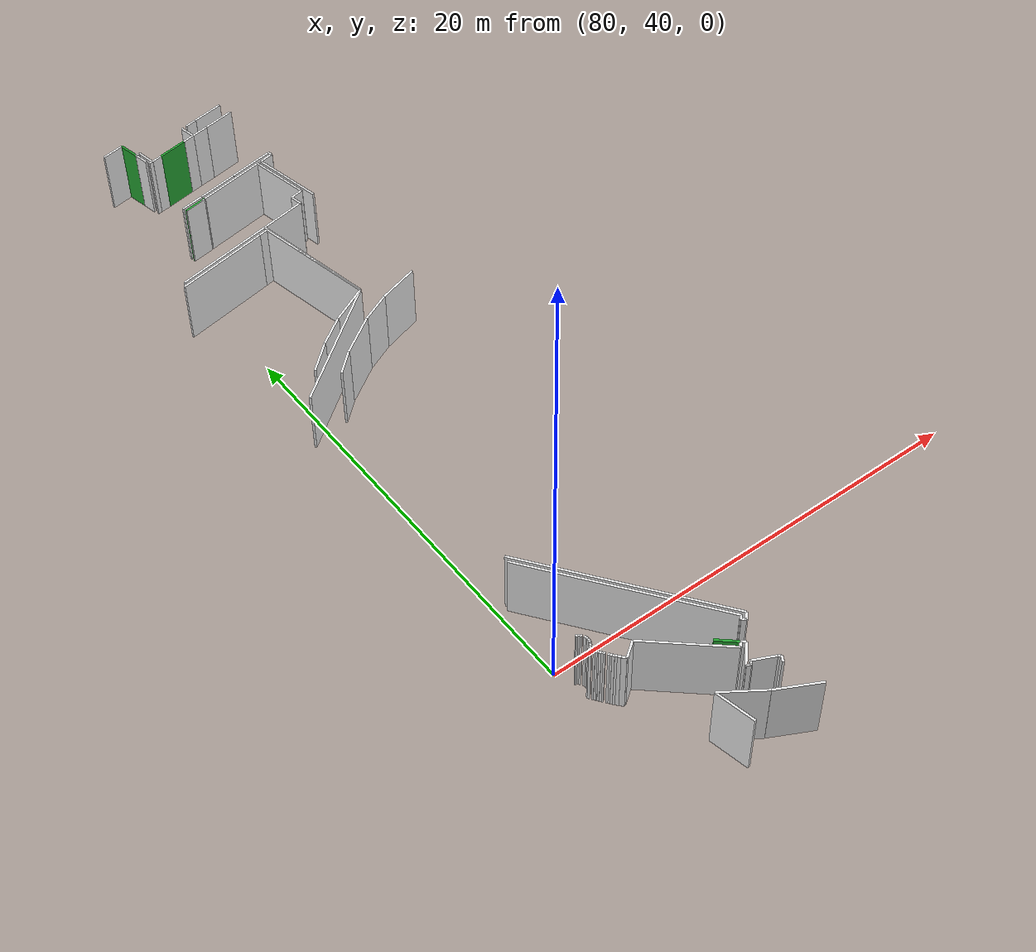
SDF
<sdf version="1.6">
 <world name="default">
  <model name="wall_81.1_72.9_1.5">
   <static>true</static>
   <pose>81.05000000001746 72.92000000015832 1.5 0 0 1.7721134351846652</pose>
   <link name="link">
    <visual name="visual">
     <geometry><box><size>1.0001999799880765 0.1 3</size></box></geometry>
     <material>
      <script><uri>file://media/materials/scripts/gazebo.material</uri><name>Gazebo/Green</name></script>
     </material>
    </visual>
    <collision name="collision"><geometry><box><size>1.0001999799880765 0.1 3</size></box></geometry></collision>
   </link>
  </model>
  <model name="wall_81.6_67.9_1.5">
   <static>true</static>
   <pose>81.55000000001746 67.88999999989755 1.5 0 0 0.2009542638673007</pose>
   <link name="link">
    <visual name="visual">
     <geometry><box><size>1.1021796587332557 0.1 3</size></box></geometry>
     <material>
      <script><uri>file://media/materials/scripts/gazebo.material</uri><name>Gazebo/Green</name></script>
     </material>
    </visual>
    <collision name="collision"><geometry><box><size>1.1021796587332557 0.1 3</size></box></geometry></collision>
   </link>
  </model>
  <model name="wall_84.6_35.7_1.5">
   <static>true</static>
   <pose>84.57999999989988 35.72999999998137 1.5 0 0 2.4132752726364988</pose>
   <link name="link">
    <visual name="visual">
     <geometry><box><size>0.9915644207652375 0.1 3</size></box></geometry>
     <material>
      <script><uri>file://media/materials/scripts/gazebo.material</uri><name>Gazebo/Green</name></script>
     </material>
    </visual>
    <collision name="collision"><geometry><box><size>0.9915644207652375 0.1 3</size></box></geometry></collision>
   </link>
  </model>
  <model name="wall_82.7_71.8_1.5">
   <static>true</static>
   <pose>82.68499999999767 71.84499999997206 1.5 0 0 0.19739555986646415</pose>
   <link name="link">
    <visual name="visual">
     <geometry><box><size>1.3767352686508738 0.1 3</size></box></geometry>
     <material>
      <script><uri>file://media/materials/scripts/gazebo.material</uri><name>Gazebo/Green</name></script>
     </material>
    </visual>
    <collision name="collision"><geometry><box><size>1.3767352686508738 0.1 3</size></box></geometry></collision>
   </link>
  </model>
  <model name="wall_81.2_72.1_1.5">
   <static>true</static>
   <pose>81.21500000002561 72.10000000009313 1.5 0 0 1.7652764429739842</pose>
   <link name="link">
    <visual name="visual">
     <geometry><box><size>0.6726812025007879 0.1 3</size></box></geometry>
     <material>
      <script><uri>file://media/materials/scripts/gazebo.material</uri><name>Gazebo/White</name></script>
     </material>
    </visual>
    <collision name="collision"><geometry><box><size>0.6726812025007879 0.1 3</size></box></geometry></collision>
   </link>
  </model>
  <model name="wall_80.4_73.3_1.5">
   <static>true</static>
   <pose>80.43499999999767 73.31000000005588 1.5 0 0 -2.949804511433895</pose>
   <link name="link">
    <visual name="visual">
     <geometry><box><size>1.049237818672231 0.1 3</size></box></geometry>
     <material>
      <script><uri>file://media/materials/scripts/gazebo.material</uri><name>Gazebo/White</name></script>
     </material>
    </visual>
    <collision name="collision"><geometry><box><size>1.049237818672231 0.1 3</size></box></geometry></collision>
   </link>
  </model>
  <model name="wall_80.9_64.3_1.5">
   <static>true</static>
   <pose>80.89999999999418 64.30999999982305 1.5 0 0 0.19486391966931105</pose>
   <link name="link">
    <visual name="visual">
     <geometry><box><size>4.647967297627117 0.1 3</size></box></geometry>
     <material>
      <script><uri>file://media/materials/scripts/gazebo.material</uri><name>Gazebo/White</name></script>
     </material>
    </visual>
    <collision name="collision"><geometry><box><size>4.647967297627117 0.1 3</size></box></geometry></collision>
   </link>
  </model>
  <model name="wall_84.2_65.0_1.5">
   <static>true</static>
   <pose>84.23999999999069 64.96999999997206 1.5 0 0 0.1955806799877843</pose>
   <link name="link">
    <visual name="visual">
     <geometry><box><size>2.1612033685678047 0.1 3</size></box></geometry>
     <material>
      <script><uri>file://media/materials/scripts/gazebo.material</uri><name>Gazebo/White</name></script>
     </material>
    </visual>
    <collision name="collision"><geometry><box><size>2.1612033685678047 0.1 3</size></box></geometry></collision>
   </link>
  </model>
  <model name="wall_85.2_65.5_1.5">
   <static>true</static>
   <pose>85.24499999999534 65.45000000018626 1.5 0 0 1.7717505904446613</pose>
   <link name="link">
    <visual name="visual">
     <geometry><box><size>0.551089829371909 0.1 3</size></box></geometry>
     <material>
      <script><uri>file://media/materials/scripts/gazebo.material</uri><name>Gazebo/White</name></script>
     </material>
    </visual>
    <collision name="collision"><geometry><box><size>0.551089829371909 0.1 3</size></box></geometry></collision>
   </link>
  </model>
  <model name="wall_85.5_65.8_1.5">
   <static>true</static>
   <pose>85.48500000001513 65.78000000002794 1.5 0 0 0.20065287673540141</pose>
   <link name="link">
    <visual name="visual">
     <geometry><box><size>0.6020797288941763 0.1 3</size></box></geometry>
     <material>
      <script><uri>file://media/materials/scripts/gazebo.material</uri><name>Gazebo/White</name></script>
     </material>
    </visual>
    <collision name="collision"><geometry><box><size>0.6020797288941763 0.1 3</size></box></geometry></collision>
   </link>
  </model>
  <model name="wall_85.5_67.2_1.5">
   <static>true</static>
   <pose>85.5 67.22999999998137 1.5 0 0 1.7695750116283997</pose>
   <link name="link">
    <visual name="visual">
     <geometry><box><size>2.835842026896503 0.1 3</size></box></geometry>
     <material>
      <script><uri>file://media/materials/scripts/gazebo.material</uri><name>Gazebo/White</name></script>
     </material>
    </visual>
    <collision name="collision"><geometry><box><size>2.835842026896503 0.1 3</size></box></geometry></collision>
   </link>
  </model>
  <model name="wall_83.7_68.3_1.5">
   <static>true</static>
   <pose>83.65499999999884 68.31000000005588 1.5 0 0 -2.9460409760625255</pose>
   <link name="link">
    <visual name="visual">
     <geometry><box><size>3.190814942895208 0.1 3</size></box></geometry>
     <material>
      <script><uri>file://media/materials/scripts/gazebo.material</uri><name>Gazebo/White</name></script>
     </material>
    </visual>
    <collision name="collision"><geometry><box><size>3.190814942895208 0.1 3</size></box></geometry></collision>
   </link>
  </model>
  <model name="wall_82.1_68.0_1.5">
   <static>true</static>
   <pose>82.06000000002678 67.98999999999069 1.5 0 0 -2.8198420989021127</pose>
   <link name="link">
    <visual name="visual">
     <geometry><box><size>0.06324555320704896 0.1 3</size></box></geometry>
     <material>
      <script><uri>file://media/materials/scripts/gazebo.material</uri><name>Gazebo/White</name></script>
     </material>
    </visual>
    <collision name="collision"><geometry><box><size>0.06324555320704896 0.1 3</size></box></geometry></collision>
   </link>
  </model>
  <model name="wall_81.5_67.9_1.5">
   <static>true</static>
   <pose>81.52000000001863 67.87999999988824 1.5 0 0 -2.9479706605614444</pose>
   <link name="link">
    <visual name="visual">
     <geometry><box><size>1.039422916869021 0.1 3</size></box></geometry>
     <material>
      <script><uri>file://media/materials/scripts/gazebo.material</uri><name>Gazebo/White</name></script>
     </material>
    </visual>
    <collision name="collision"><geometry><box><size>1.039422916869021 0.1 3</size></box></geometry></collision>
   </link>
  </model>
  <model name="wall_85.7_68.7_1.5">
   <static>true</static>
   <pose>85.73999999999069 68.71499999985099 1.5 0 0 -2.9411940999358763</pose>
   <link name="link">
    <visual name="visual">
     <geometry><box><size>0.6530696746816714 0.1 3</size></box></geometry>
     <material>
      <script><uri>file://media/materials/scripts/gazebo.material</uri><name>Gazebo/White</name></script>
     </material>
    </visual>
    <collision name="collision"><geometry><box><size>0.6530696746816714 0.1 3</size></box></geometry></collision>
   </link>
  </model>
  <model name="wall_85.8_67.0_1.5">
   <static>true</static>
   <pose>85.75 66.98999999999069 1.5 0 0 -1.374559514958863</pose>
   <link name="link">
    <visual name="visual">
     <geometry><box><size>3.384966764819104 0.1 3</size></box></geometry>
     <material>
      <script><uri>file://media/materials/scripts/gazebo.material</uri><name>Gazebo/White</name></script>
     </material>
    </visual>
    <collision name="collision"><geometry><box><size>3.384966764819104 0.1 3</size></box></geometry></collision>
   </link>
  </model>
  <model name="wall_83.1_39.9_1.5">
   <static>true</static>
   <pose>83.10500000001048 39.88000000012107 1.5 0 0 -0.9358171018698879</pose>
   <link name="link">
    <visual name="visual">
     <geometry><box><size>8.918323833668834 0.1 3</size></box></geometry>
     <material>
      <script><uri>file://media/materials/scripts/gazebo.material</uri><name>Gazebo/White</name></script>
     </material>
    </visual>
    <collision name="collision"><geometry><box><size>8.918323833668834 0.1 3</size></box></geometry></collision>
   </link>
  </model>
  <model name="wall_85.7_36.2_1.5">
   <static>true</static>
   <pose>85.67999999999302 36.21500000008382 1.5 0 0 -2.3217253895523142</pose>
   <link name="link">
    <visual name="visual">
     <geometry><box><size>0.20518284522827895 0.1 3</size></box></geometry>
     <material>
      <script><uri>file://media/materials/scripts/gazebo.material</uri><name>Gazebo/White</name></script>
     </material>
    </visual>
    <collision name="collision"><geometry><box><size>0.20518284522827895 0.1 3</size></box></geometry></collision>
   </link>
  </model>
  <model name="wall_84.9_35.3_1.5">
   <static>true</static>
   <pose>84.86500000001979 35.31000000005588 1.5 0 0 -2.3276308331322193</pose>
   <link name="link">
    <visual name="visual">
     <geometry><box><size>0.24758836783494145 0.1 3</size></box></geometry>
     <material>
      <script><uri>file://media/materials/scripts/gazebo.material</uri><name>Gazebo/White</name></script>
     </material>
    </visual>
    <collision name="collision"><geometry><box><size>0.24758836783494145 0.1 3</size></box></geometry></collision>
   </link>
  </model>
  <model name="wall_83.3_36.5_1.5">
   <static>true</static>
   <pose>83.3300000000163 36.515000000130385 1.5 0 0 2.4126008939400343</pose>
   <link name="link">
    <visual name="visual">
     <geometry><box><size>3.8882000976497033 0.1 3</size></box></geometry>
     <material>
      <script><uri>file://media/materials/scripts/gazebo.material</uri><name>Gazebo/White</name></script>
     </material>
    </visual>
    <collision name="collision"><geometry><box><size>3.8882000976497033 0.1 3</size></box></geometry></collision>
   </link>
  </model>
  <model name="wall_81.6_37.6_1.5">
   <static>true</static>
   <pose>81.55999999999767 37.574999999953434 1.5 0 0 -2.508166770423084</pose>
   <link name="link">
    <visual name="visual">
     <geometry><box><size>0.7940403013767493 0.1 3</size></box></geometry>
     <material>
      <script><uri>file://media/materials/scripts/gazebo.material</uri><name>Gazebo/White</name></script>
     </material>
    </visual>
    <collision name="collision"><geometry><box><size>0.7940403013767493 0.1 3</size></box></geometry></collision>
   </link>
  </model>
  <model name="wall_81.2_37.4_1.5">
   <static>true</static>
   <pose>81.1699999999837 37.419999999925494 1.5 0 0 2.2896263260044316</pose>
   <link name="link">
    <visual name="visual">
     <geometry><box><size>0.21260291637603487 0.1 3</size></box></geometry>
     <material>
      <script><uri>file://media/materials/scripts/gazebo.material</uri><name>Gazebo/White</name></script>
     </material>
    </visual>
    <collision name="collision"><geometry><box><size>0.21260291637603487 0.1 3</size></box></geometry></collision>
   </link>
  </model>
  <model name="wall_81.1_37.6_1.5">
   <static>true</static>
   <pose>81.05499999999302 37.55499999993481 1.5 0 0 2.2565258381046025</pose>
   <link name="link">
    <visual name="visual">
     <geometry><box><size>0.1421267039139652 0.1 3</size></box></geometry>
     <material>
      <script><uri>file://media/materials/scripts/gazebo.material</uri><name>Gazebo/White</name></script>
     </material>
    </visual>
    <collision name="collision"><geometry><box><size>0.1421267039139652 0.1 3</size></box></geometry></collision>
   </link>
  </model>
  <model name="wall_81.0_37.6_1.5">
   <static>true</static>
   <pose>80.98000000001048 37.64500000001863 1.5 0 0 2.2794225967996993</pose>
   <link name="link">
    <visual name="visual">
     <geometry><box><size>0.09219544479768974 0.1 3</size></box></geometry>
     <material>
      <script><uri>file://media/materials/scripts/gazebo.material</uri><name>Gazebo/White</name></script>
     </material>
    </visual>
    <collision name="collision"><geometry><box><size>0.09219544479768974 0.1 3</size></box></geometry></collision>
   </link>
  </model>
  <model name="wall_80.9_37.7_1.5">
   <static>true</static>
   <pose>80.9200000000128 37.71999999997206 1.5 0 0 2.2142974379164873</pose>
   <link name="link">
    <visual name="visual">
     <geometry><box><size>0.09999999968567863 0.1 3</size></box></geometry>
     <material>
      <script><uri>file://media/materials/scripts/gazebo.material</uri><name>Gazebo/White</name></script>
     </material>
    </visual>
    <collision name="collision"><geometry><box><size>0.09999999968567863 0.1 3</size></box></geometry></collision>
   </link>
  </model>
  <model name="wall_80.9_37.8_1.5">
   <static>true</static>
   <pose>80.86999999999534 37.78999999980442 1.5 0 0 2.158798930342464</pose>
   <link name="link">
    <visual name="visual">
     <geometry><box><size>0.0721110255764384 0.1 3</size></box></geometry>
     <material>
      <script><uri>file://media/materials/scripts/gazebo.material</uri><name>Gazebo/White</name></script>
     </material>
    </visual>
    <collision name="collision"><geometry><box><size>0.0721110255764384 0.1 3</size></box></geometry></collision>
   </link>
  </model>
  <model name="wall_80.8_37.9_1.5">
   <static>true</static>
   <pose>80.82499999998254 37.85499999998137 1.5 0 0 2.1910458106539252</pose>
   <link name="link">
    <visual name="visual">
     <geometry><box><size>0.08602325290617123 0.1 3</size></box></geometry>
     <material>
      <script><uri>file://media/materials/scripts/gazebo.material</uri><name>Gazebo/White</name></script>
     </material>
    </visual>
    <collision name="collision"><geometry><box><size>0.08602325290617123 0.1 3</size></box></geometry></collision>
   </link>
  </model>
  <model name="wall_80.7_38.0_1.5">
   <static>true</static>
   <pose>80.72000000000116 37.98999999999069 1.5 0 0 2.158798929670837</pose>
   <link name="link">
    <visual name="visual">
     <geometry><box><size>0.07211102554415061 0.1 3</size></box></geometry>
     <material>
      <script><uri>file://media/materials/scripts/gazebo.material</uri><name>Gazebo/White</name></script>
     </material>
    </visual>
    <collision name="collision"><geometry><box><size>0.07211102554415061 0.1 3</size></box></geometry></collision>
   </link>
  </model>
  <model name="wall_80.7_38.1_1.5">
   <static>true</static>
   <pose>80.67500000001746 38.050000000046566 1.5 0 0 2.2655346024190655</pose>
   <link name="link">
    <visual name="visual">
     <geometry><box><size>0.07810249679454152 0.1 3</size></box></geometry>
     <material>
      <script><uri>file://media/materials/scripts/gazebo.material</uri><name>Gazebo/White</name></script>
     </material>
    </visual>
    <collision name="collision"><geometry><box><size>0.07810249679454152 0.1 3</size></box></geometry></collision>
   </link>
  </model>
  <model name="wall_80.6_38.1_1.5">
   <static>true</static>
   <pose>80.625 38.11499999999069 1.5 0 0 2.191045814350898</pose>
   <link name="link">
    <visual name="visual">
     <geometry><box><size>0.08602325256107957 0.1 3</size></box></geometry>
     <material>
      <script><uri>file://media/materials/scripts/gazebo.material</uri><name>Gazebo/White</name></script>
     </material>
    </visual>
    <collision name="collision"><geometry><box><size>0.08602325256107957 0.1 3</size></box></geometry></collision>
   </link>
  </model>
  <model name="wall_80.6_38.2_1.5">
   <static>true</static>
   <pose>80.58499999999185 38.175000000046566 1.5 0 0 2.1112158241550976</pose>
   <link name="link">
    <visual name="visual">
     <geometry><box><size>0.058309519172461015 0.1 3</size></box></geometry>
     <material>
      <script><uri>file://media/materials/scripts/gazebo.material</uri><name>Gazebo/White</name></script>
     </material>
    </visual>
    <collision name="collision">
     <geometry><box><size>0.058309519172461015 0.1 3</size></box></geometry>
    </collision>
   </link>
  </model>
  <model name="wall_80.5_38.2_1.5">
   <static>true</static>
   <pose>80.5450000000128 38.22999999998137 1.5 0 0 2.265534606235961</pose>
   <link name="link">
    <visual name="visual">
     <geometry><box><size>0.07810249643681061 0.1 3</size></box></geometry>
     <material>
      <script><uri>file://media/materials/scripts/gazebo.material</uri><name>Gazebo/White</name></script>
     </material>
    </visual>
    <collision name="collision"><geometry><box><size>0.07810249643681061 0.1 3</size></box></geometry></collision>
   </link>
  </model>
  <model name="wall_80.5_38.3_1.5">
   <static>true</static>
   <pose>80.5 38.28999999980442 1.5 0 0 2.158798930342464</pose>
   <link name="link">
    <visual name="visual">
     <geometry><box><size>0.0721110255764384 0.1 3</size></box></geometry>
     <material>
      <script><uri>file://media/materials/scripts/gazebo.material</uri><name>Gazebo/White</name></script>
     </material>
    </visual>
    <collision name="collision"><geometry><box><size>0.0721110255764384 0.1 3</size></box></geometry></collision>
   </link>
  </model>
  <model name="wall_80.4_38.4_1.5">
   <static>true</static>
   <pose>80.41000000000349 38.419999999925494 1.5 0 0 2.2142974351225195</pose>
   <link name="link">
    <visual name="visual">
     <geometry><box><size>0.10000000005820765 0.1 3</size></box></geometry>
     <material>
      <script><uri>file://media/materials/scripts/gazebo.material</uri><name>Gazebo/White</name></script>
     </material>
    </visual>
    <collision name="collision"><geometry><box><size>0.10000000005820765 0.1 3</size></box></geometry></collision>
   </link>
  </model>
  <model name="wall_80.4_38.5_1.5">
   <static>true</static>
   <pose>80.4200000000128 38.47999999998137 1.5 0 0 0.4636476092918444</pose>
   <link name="link">
    <visual name="visual">
     <geometry><box><size>0.0894427191312291 0.1 3</size></box></geometry>
     <material>
      <script><uri>file://media/materials/scripts/gazebo.material</uri><name>Gazebo/White</name></script>
     </material>
    </visual>
    <collision name="collision"><geometry><box><size>0.0894427191312291 0.1 3</size></box></geometry></collision>
   </link>
  </model>
  <model name="wall_80.5_38.5_1.5">
   <static>true</static>
   <pose>80.49000000001979 38.52499999990687 1.5 0 0 0.6947382743836776</pose>
   <link name="link">
    <visual name="visual">
     <geometry><box><size>0.07810249663803426 0.1 3</size></box></geometry>
     <material>
      <script><uri>file://media/materials/scripts/gazebo.material</uri><name>Gazebo/White</name></script>
     </material>
    </visual>
    <collision name="collision"><geometry><box><size>0.07810249663803426 0.1 3</size></box></geometry></collision>
   </link>
  </model>
  <model name="wall_80.6_38.6_1.5">
   <static>true</static>
   <pose>80.55000000001746 38.579999999841675 1.5 0 0 0.7853981638825122</pose>
   <link name="link">
    <visual name="visual">
     <geometry><box><size>0.084852813780252 0.1 3</size></box></geometry>
     <material>
      <script><uri>file://media/materials/scripts/gazebo.material</uri><name>Gazebo/White</name></script>
     </material>
    </visual>
    <collision name="collision"><geometry><box><size>0.084852813780252 0.1 3</size></box></geometry></collision>
   </link>
  </model>
  <model name="wall_80.6_38.7_1.5">
   <static>true</static>
   <pose>80.63000000000466 38.71999999997206 1.5 0 0 1.3258176622984403</pose>
   <link name="link">
    <visual name="visual">
     <geometry><box><size>0.08246211213739423 0.1 3</size></box></geometry>
     <material>
      <script><uri>file://media/materials/scripts/gazebo.material</uri><name>Gazebo/White</name></script>
     </material>
    </visual>
    <collision name="collision"><geometry><box><size>0.08246211213739423 0.1 3</size></box></geometry></collision>
   </link>
  </model>
  <model name="wall_80.6_38.8_1.5">
   <static>true</static>
   <pose>80.64500000001863 38.80499999993481 1.5 0 0 1.4601391059049407</pose>
   <link name="link">
    <visual name="visual">
     <geometry><box><size>0.0905538516971156 0.1 3</size></box></geometry>
     <material>
      <script><uri>file://media/materials/scripts/gazebo.material</uri><name>Gazebo/White</name></script>
     </material>
    </visual>
    <collision name="collision"><geometry><box><size>0.0905538516971156 0.1 3</size></box></geometry></collision>
   </link>
  </model>
  <model name="wall_80.6_38.9_1.5">
   <static>true</static>
   <pose>80.64500000001863 38.890000000130385 1.5 0 0 1.695151321341658</pose>
   <link name="link">
    <visual name="visual">
     <geometry><box><size>0.08062257755807112 0.1 3</size></box></geometry>
     <material>
      <script><uri>file://media/materials/scripts/gazebo.material</uri><name>Gazebo/White</name></script>
     </material>
    </visual>
    <collision name="collision"><geometry><box><size>0.08062257755807112 0.1 3</size></box></geometry></collision>
   </link>
  </model>
  <model name="wall_80.6_39.0_1.5">
   <static>true</static>
   <pose>80.625 38.96999999997206 1.5 0 0 1.9295669989791453</pose>
   <link name="link">
    <visual name="visual">
     <geometry><box><size>0.0854400370967353 0.1 3</size></box></geometry>
     <material>
      <script><uri>file://media/materials/scripts/gazebo.material</uri><name>Gazebo/White</name></script>
     </material>
    </visual>
    <collision name="collision"><geometry><box><size>0.0854400370967353 0.1 3</size></box></geometry></collision>
   </link>
  </model>
  <model name="wall_80.5_39.1_1.5">
   <static>true</static>
   <pose>80.53500000000349 39.110000000102445 1.5 0 0 2.2655346024190655</pose>
   <link name="link">
    <visual name="visual">
     <geometry><box><size>0.07810249679454152 0.1 3</size></box></geometry>
     <material>
      <script><uri>file://media/materials/scripts/gazebo.material</uri><name>Gazebo/White</name></script>
     </material>
    </visual>
    <collision name="collision"><geometry><box><size>0.07810249679454152 0.1 3</size></box></geometry></collision>
   </link>
  </model>
  <model name="wall_80.5_39.2_1.5">
   <static>true</static>
   <pose>80.47500000000582 39.16500000003725 1.5 0 0 2.521343169416129</pose>
   <link name="link">
    <visual name="visual">
     <geometry><box><size>0.08602325256784608 0.1 3</size></box></geometry>
     <material>
      <script><uri>file://media/materials/scripts/gazebo.material</uri><name>Gazebo/White</name></script>
     </material>
    </visual>
    <collision name="collision"><geometry><box><size>0.08602325256784608 0.1 3</size></box></geometry></collision>
   </link>
  </model>
  <model name="wall_80.4_39.2_1.5">
   <static>true</static>
   <pose>80.39999999999418 39.205000000074506 1.5 0 0 2.7828219805284427</pose>
   <link name="link">
    <visual name="visual">
     <geometry><box><size>0.08544003755999831 0.1 3</size></box></geometry>
     <material>
      <script><uri>file://media/materials/scripts/gazebo.material</uri><name>Gazebo/White</name></script>
     </material>
    </visual>
    <collision name="collision"><geometry><box><size>0.08544003755999831 0.1 3</size></box></geometry></collision>
   </link>
  </model>
  <model name="wall_81.4_55.8_1.5">
   <static>true</static>
   <pose>81.41499999997905 55.79000000003725 1.5 0 0 0.7444853337953005</pose>
   <link name="link">
    <visual name="visual">
     <geometry><box><size>1.2101652781804741 0.1 3</size></box></geometry>
     <material>
      <script><uri>file://media/materials/scripts/gazebo.material</uri><name>Gazebo/White</name></script>
     </material>
    </visual>
    <collision name="collision"><geometry><box><size>1.2101652781804741 0.1 3</size></box></geometry></collision>
   </link>
  </model>
  <model name="wall_82.7_56.8_1.5">
   <static>true</static>
   <pose>82.7049999999872 56.78000000002794 1.5 0 0 0.6015335773054936</pose>
   <link name="link">
    <visual name="visual">
     <geometry><box><size>2.0498048685846277 0.1 3</size></box></geometry>
     <material>
      <script><uri>file://media/materials/scripts/gazebo.material</uri><name>Gazebo/White</name></script>
     </material>
    </visual>
    <collision name="collision"><geometry><box><size>2.0498048685846277 0.1 3</size></box></geometry></collision>
   </link>
  </model>
  <model name="wall_84.2_57.7_1.5">
   <static>true</static>
   <pose>84.20999999999185 57.67999999993481 1.5 0 0 0.45145309163045305</pose>
   <link name="link">
    <visual name="visual">
     <geometry><box><size>1.4669696657345486 0.1 3</size></box></geometry>
     <material>
      <script><uri>file://media/materials/scripts/gazebo.material</uri><name>Gazebo/White</name></script>
     </material>
    </visual>
    <collision name="collision"><geometry><box><size>1.4669696657345486 0.1 3</size></box></geometry></collision>
   </link>
  </model>
  <model name="wall_85.8_58.3_1.5">
   <static>true</static>
   <pose>85.79000000000815 58.29000000003725 1.5 0 0 0.30535858012147843</pose>
   <link name="link">
    <visual name="visual">
     <geometry><box><size>1.9292485584238948 0.1 3</size></box></geometry>
     <material>
      <script><uri>file://media/materials/scripts/gazebo.material</uri><name>Gazebo/White</name></script>
     </material>
    </visual>
    <collision name="collision"><geometry><box><size>1.9292485584238948 0.1 3</size></box></geometry></collision>
   </link>
  </model>
  <model name="wall_85.6_33.9_1.5">
   <static>true</static>
   <pose>85.63500000000931 33.92999999993481 1.5 0 0 1.0475180049988588</pose>
   <link name="link">
    <visual name="visual">
     <geometry><box><size>0.3001666206174493 0.1 3</size></box></geometry>
     <material>
      <script><uri>file://media/materials/scripts/gazebo.material</uri><name>Gazebo/White</name></script>
     </material>
    </visual>
    <collision name="collision"><geometry><box><size>0.3001666206174493 0.1 3</size></box></geometry></collision>
   </link>
  </model>
  <model name="wall_85.6_34.1_1.5">
   <static>true</static>
   <pose>85.64500000001863 34.09499999997206 1.5 0 0 2.647651285684841</pose>
   <link name="link">
    <visual name="visual">
     <geometry><box><size>0.14764823052695686 0.1 3</size></box></geometry>
     <material>
      <script><uri>file://media/materials/scripts/gazebo.material</uri><name>Gazebo/White</name></script>
     </material>
    </visual>
    <collision name="collision"><geometry><box><size>0.14764823052695686 0.1 3</size></box></geometry></collision>
   </link>
  </model>
  <model name="wall_85.1_34.3_1.5">
   <static>true</static>
   <pose>85.125 34.3499999998603 1.5 0 0 2.6912186013369697</pose>
   <link name="link">
    <visual name="visual">
     <geometry><box><size>1.0107917688674317 0.1 3</size></box></geometry>
     <material>
      <script><uri>file://media/materials/scripts/gazebo.material</uri><name>Gazebo/White</name></script>
     </material>
    </visual>
    <collision name="collision"><geometry><box><size>1.0107917688674317 0.1 3</size></box></geometry></collision>
   </link>
  </model>
  <model name="wall_84.6_34.5_1.5">
   <static>true</static>
   <pose>84.61499999999069 34.484999999869615 1.5 0 0 -2.145101157111568</pose>
   <link name="link">
    <visual name="visual">
     <geometry><box><size>0.20248456724302388 0.1 3</size></box></geometry>
     <material>
      <script><uri>file://media/materials/scripts/gazebo.material</uri><name>Gazebo/White</name></script>
     </material>
    </visual>
    <collision name="collision"><geometry><box><size>0.20248456724302388 0.1 3</size></box></geometry></collision>
   </link>
  </model>
  <model name="wall_84.5_34.4_1.5">
   <static>true</static>
   <pose>84.48499999998603 34.449999999953434 1.5 0 0 2.5535900496840247</pose>
   <link name="link">
    <visual name="visual">
     <geometry><box><size>0.18027756384423263 0.1 3</size></box></geometry>
     <material>
      <script><uri>file://media/materials/scripts/gazebo.material</uri><name>Gazebo/White</name></script>
     </material>
    </visual>
    <collision name="collision"><geometry><box><size>0.18027756384423263 0.1 3</size></box></geometry></collision>
   </link>
  </model>
  <model name="wall_84.8_34.9_1.5">
   <static>true</static>
   <pose>84.75499999997555 34.88500000000931 1.5 0 0 0.8401379434576747</pose>
   <link name="link">
    <visual name="visual">
     <geometry><box><size>1.0339245620604522 0.1 3</size></box></geometry>
     <material>
      <script><uri>file://media/materials/scripts/gazebo.material</uri><name>Gazebo/White</name></script>
     </material>
    </visual>
    <collision name="collision"><geometry><box><size>1.0339245620604522 0.1 3</size></box></geometry></collision>
   </link>
  </model>
  <model name="wall_85.0_35.3_1.5">
   <static>true</static>
   <pose>85.02499999999418 35.33499999996275 1.5 0 0 2.427501955287879</pose>
   <link name="link">
    <visual name="visual">
     <geometry><box><size>0.19849433231320573 0.1 3</size></box></geometry>
     <material>
      <script><uri>file://media/materials/scripts/gazebo.material</uri><name>Gazebo/White</name></script>
     </material>
    </visual>
    <collision name="collision"><geometry><box><size>0.19849433231320573 0.1 3</size></box></geometry></collision>
   </link>
  </model>
  <model name="wall_85.7_36.1_1.5">
   <static>true</static>
   <pose>85.69000000000233 36.080000000074506 1.5 0 0 -0.6435011091425303</pose>
   <link name="link">
    <visual name="visual">
     <geometry><box><size>0.20000000009313226 0.1 3</size></box></geometry>
     <material>
      <script><uri>file://media/materials/scripts/gazebo.material</uri><name>Gazebo/White</name></script>
     </material>
    </visual>
    <collision name="collision"><geometry><box><size>0.20000000009313226 0.1 3</size></box></geometry></collision>
   </link>
  </model>
  <model name="wall_85.9_36.1_1.5">
   <static>true</static>
   <pose>85.88500000000931 36.14999999990687 1.5 0 0 0.8465463256603086</pose>
   <link name="link">
    <visual name="visual">
     <geometry><box><size>0.34713109897444044 0.1 3</size></box></geometry>
     <material>
      <script><uri>file://media/materials/scripts/gazebo.material</uri><name>Gazebo/White</name></script>
     </material>
    </visual>
    <collision name="collision"><geometry><box><size>0.34713109897444044 0.1 3</size></box></geometry></collision>
   </link>
  </model>
  <model name="wall_83.3_40.0_1.5">
   <static>true</static>
   <pose>83.26500000001397 40.0 1.5 0 0 2.2047677262171748</pose>
   <link name="link">
    <visual name="visual">
     <geometry><box><size>9.234419310697987 0.1 3</size></box></geometry>
     <material>
      <script><uri>file://media/materials/scripts/gazebo.material</uri><name>Gazebo/White</name></script>
     </material>
    </visual>
    <collision name="collision"><geometry><box><size>9.234419310697987 0.1 3</size></box></geometry></collision>
   </link>
  </model>
  <model name="wall_84.3_72.9_1.5">
   <static>true</static>
   <pose>84.29000000000815 72.92500000004657 1.5 0 0 0.2009542634638528</pose>
   <link name="link">
    <visual name="visual">
     <geometry><box><size>0.5510898292916356 0.1 3</size></box></geometry>
     <material>
      <script><uri>file://media/materials/scripts/gazebo.material</uri><name>Gazebo/White</name></script>
     </material>
    </visual>
    <collision name="collision"><geometry><box><size>0.5510898292916356 0.1 3</size></box></geometry></collision>
   </link>
  </model>
  <model name="wall_85.3_73.1_1.5">
   <static>true</static>
   <pose>85.2950000000128 73.125 1.5 0 0 0.19477776480304612</pose>
   <link name="link">
    <visual name="visual">
     <geometry><box><size>1.4983324064140755 0.1 3</size></box></geometry>
     <material>
      <script><uri>file://media/materials/scripts/gazebo.material</uri><name>Gazebo/White</name></script>
     </material>
    </visual>
    <collision name="collision"><geometry><box><size>1.4983324064140755 0.1 3</size></box></geometry></collision>
   </link>
  </model>
  <model name="wall_83.8_72.8_1.5">
   <static>true</static>
   <pose>83.7950000000128 72.83499999996275 1.5 0 0 -2.9441970979935492</pose>
   <link name="link">
    <visual name="visual">
     <geometry><box><size>0.050990195080677016 0.1 3</size></box></geometry>
     <material>
      <script><uri>file://media/materials/scripts/gazebo.material</uri><name>Gazebo/White</name></script>
     </material>
    </visual>
    <collision name="collision">
     <geometry><box><size>0.050990195080677016 0.1 3</size></box></geometry>
    </collision>
   </link>
  </model>
  <model name="wall_83.8_72.5_1.5">
   <static>true</static>
   <pose>83.84500000000116 72.45999999996275 1.5 0 0 -1.3708033702928581</pose>
   <link name="link">
    <visual name="visual">
     <geometry><box><size>0.7550496674526308 0.1 3</size></box></geometry>
     <material>
      <script><uri>file://media/materials/scripts/gazebo.material</uri><name>Gazebo/White</name></script>
     </material>
    </visual>
    <collision name="collision"><geometry><box><size>0.7550496674526308 0.1 3</size></box></geometry></collision>
   </link>
  </model>
  <model name="wall_83.6_72.0_1.5">
   <static>true</static>
   <pose>83.63999999998487 72.03499999991618 1.5 0 0 -2.9476335065532946</pose>
   <link name="link">
    <visual name="visual">
     <geometry><box><size>0.5707013229077953 0.1 3</size></box></geometry>
     <material>
      <script><uri>file://media/materials/scripts/gazebo.material</uri><name>Gazebo/White</name></script>
     </material>
    </visual>
    <collision name="collision"><geometry><box><size>0.5707013229077953 0.1 3</size></box></geometry></collision>
   </link>
  </model>
  <model name="wall_81.8_71.7_1.5">
   <static>true</static>
   <pose>81.76000000000931 71.65999999991618 1.5 0 0 -2.944197093560812</pose>
   <link name="link">
    <visual name="visual">
     <geometry><box><size>0.5099019513775432 0.1 3</size></box></geometry>
     <material>
      <script><uri>file://media/materials/scripts/gazebo.material</uri><name>Gazebo/White</name></script>
     </material>
    </visual>
    <collision name="collision"><geometry><box><size>0.5099019513775432 0.1 3</size></box></geometry></collision>
   </link>
  </model>
  <model name="wall_81.4_72.0_1.5">
   <static>true</static>
   <pose>81.42500000001746 72.04000000003725 1.5 0 0 1.7659547538191616</pose>
   <link name="link">
    <visual name="visual">
     <geometry><box><size>0.8766413180834757 0.1 3</size></box></geometry>
     <material>
      <script><uri>file://media/materials/scripts/gazebo.material</uri><name>Gazebo/White</name></script>
     </material>
    </visual>
    <collision name="collision"><geometry><box><size>0.8766413180834757 0.1 3</size></box></geometry></collision>
   </link>
  </model>
  <model name="wall_81.2_72.5_1.5">
   <static>true</static>
   <pose>81.24500000002445 72.45000000018626 1.5 0 0 -2.9340964269693144</pose>
   <link name="link">
    <visual name="visual">
     <geometry><box><size>0.19416487839942884 0.1 3</size></box></geometry>
     <material>
      <script><uri>file://media/materials/scripts/gazebo.material</uri><name>Gazebo/White</name></script>
     </material>
    </visual>
    <collision name="collision"><geometry><box><size>0.19416487839942884 0.1 3</size></box></geometry></collision>
   </link>
  </model>
  <model name="wall_86.0_68.9_1.5">
   <static>true</static>
   <pose>86.04000000000815 68.875 1.5 0 0 1.7782925526897098</pose>
   <link name="link">
    <visual name="visual">
     <geometry><box><size>0.1941648787861511 0.1 3</size></box></geometry>
     <material>
      <script><uri>file://media/materials/scripts/gazebo.material</uri><name>Gazebo/White</name></script>
     </material>
    </visual>
    <collision name="collision"><geometry><box><size>0.1941648787861511 0.1 3</size></box></geometry></collision>
   </link>
  </model>
  <model name="wall_85.0_68.8_1.5">
   <static>true</static>
   <pose>84.96499999999651 68.76500000013039 1.5 0 0 -2.9496714915424067</pose>
   <link name="link">
    <visual name="visual">
     <geometry><box><size>2.1494650497993386 0.1 3</size></box></geometry>
     <material>
      <script><uri>file://media/materials/scripts/gazebo.material</uri><name>Gazebo/White</name></script>
     </material>
    </visual>
    <collision name="collision"><geometry><box><size>2.1494650497993386 0.1 3</size></box></geometry></collision>
   </link>
  </model>
  <model name="wall_83.0_68.4_1.5">
   <static>true</static>
   <pose>82.97999999998137 68.375 1.5 0 0 -2.9452312194754318</pose>
   <link name="link">
    <visual name="visual">
     <geometry><box><size>1.8964440408382035 0.1 3</size></box></geometry>
     <material>
      <script><uri>file://media/materials/scripts/gazebo.material</uri><name>Gazebo/White</name></script>
     </material>
    </visual>
    <collision name="collision"><geometry><box><size>1.8964440408382035 0.1 3</size></box></geometry></collision>
   </link>
  </model>
  <model name="wall_81.5_68.1_1.5">
   <static>true</static>
   <pose>81.50500000000466 68.08499999996275 1.5 0 0 -2.9512641139252844</pose>
   <link name="link">
    <visual name="visual">
     <geometry><box><size>1.1100450440920377 0.1 3</size></box></geometry>
     <material>
      <script><uri>file://media/materials/scripts/gazebo.material</uri><name>Gazebo/White</name></script>
     </material>
    </visual>
    <collision name="collision"><geometry><box><size>1.1100450440920377 0.1 3</size></box></geometry></collision>
   </link>
  </model>
  <model name="wall_81.4_71.6_1.5">
   <static>true</static>
   <pose>81.41500000000815 71.59499999997206 1.5 0 0 0.15660187592798475</pose>
   <link name="link">
    <visual name="visual">
     <geometry><box><size>0.19235384058705793 0.1 3</size></box></geometry>
     <material>
      <script><uri>file://media/materials/scripts/gazebo.material</uri><name>Gazebo/White</name></script>
     </material>
    </visual>
    <collision name="collision"><geometry><box><size>0.19235384058705793 0.1 3</size></box></geometry></collision>
   </link>
  </model>
  <model name="wall_84.3_72.2_1.5">
   <static>true</static>
   <pose>84.30999999999767 72.16500000003725 1.5 0 0 0.18998828837264137</pose>
   <link name="link">
    <visual name="visual">
     <geometry><box><size>0.7942921377902116 0.1 3</size></box></geometry>
     <material>
      <script><uri>file://media/materials/scripts/gazebo.material</uri><name>Gazebo/White</name></script>
     </material>
    </visual>
    <collision name="collision"><geometry><box><size>0.7942921377902116 0.1 3</size></box></geometry></collision>
   </link>
  </model>
  <model name="wall_85.4_72.4_1.5">
   <static>true</static>
   <pose>85.44000000000233 72.38500000000931 1.5 0 0 0.19349440901301387</pose>
   <link name="link">
    <visual name="visual">
     <geometry><box><size>1.5081445553050903 0.1 3</size></box></geometry>
     <material>
      <script><uri>file://media/materials/scripts/gazebo.material</uri><name>Gazebo/White</name></script>
     </material>
    </visual>
    <collision name="collision"><geometry><box><size>1.5081445553050903 0.1 3</size></box></geometry></collision>
   </link>
  </model>
  <model name="wall_80.6_64.1_1.5">
   <static>true</static>
   <pose>80.59999999997672 64.05000000004657 1.5 0 0 0.19468553945508393</pose>
   <link name="link">
    <visual name="visual">
     <geometry><box><size>4.342027176401746 0.1 3</size></box></geometry>
     <material>
      <script><uri>file://media/materials/scripts/gazebo.material</uri><name>Gazebo/White</name></script>
     </material>
    </visual>
    <collision name="collision"><geometry><box><size>4.342027176401746 0.1 3</size></box></geometry></collision>
   </link>
  </model>
  <model name="wall_83.0_64.5_1.5">
   <static>true</static>
   <pose>82.9549999999872 64.51500000013039 1.5 0 0 0.19739555952650487</pose>
   <link name="link">
    <visual name="visual">
     <geometry><box><size>0.45891175620554253 0.1 3</size></box></geometry>
     <material>
      <script><uri>file://media/materials/scripts/gazebo.material</uri><name>Gazebo/White</name></script>
     </material>
    </visual>
    <collision name="collision"><geometry><box><size>0.45891175620554253 0.1 3</size></box></geometry></collision>
   </link>
  </model>
  <model name="wall_83.7_61.8_1.5">
   <static>true</static>
   <pose>83.73999999999069 61.75500000012107 1.5 0 0 -1.3737435848915833</pose>
   <link name="link">
    <visual name="visual">
     <geometry><box><size>5.720707998012715 0.1 3</size></box></geometry>
     <material>
      <script><uri>file://media/materials/scripts/gazebo.material</uri><name>Gazebo/White</name></script>
     </material>
    </visual>
    <collision name="collision"><geometry><box><size>5.720707998012715 0.1 3</size></box></geometry></collision>
   </link>
  </model>
  <model name="wall_83.4_58.5_1.5">
   <static>true</static>
   <pose>83.44500000000698 58.515000000130385 1.5 0 0 -2.6709521515229318</pose>
   <link name="link">
    <visual name="visual">
     <geometry><box><size>1.9185932346558128 0.1 3</size></box></geometry>
     <material>
      <script><uri>file://media/materials/scripts/gazebo.material</uri><name>Gazebo/White</name></script>
     </material>
    </visual>
    <collision name="collision"><geometry><box><size>1.9185932346558128 0.1 3</size></box></geometry></collision>
   </link>
  </model>
  <model name="wall_82.0_57.6_1.5">
   <static>true</static>
   <pose>81.96500000002561 57.63500000000931 1.5 0 0 -2.52285831789347</pose>
   <link name="link">
    <visual name="visual">
     <geometry><box><size>1.5344705928208873 0.1 3</size></box></geometry>
     <material>
      <script><uri>file://media/materials/scripts/gazebo.material</uri><name>Gazebo/White</name></script>
     </material>
    </visual>
    <collision name="collision"><geometry><box><size>1.5344705928208873 0.1 3</size></box></geometry></collision>
   </link>
  </model>
  <model name="wall_80.8_56.7_1.5">
   <static>true</static>
   <pose>80.76500000001397 56.669999999925494 1.5 0 0 -2.4063806244587402</pose>
   <link name="link">
    <visual name="visual">
     <geometry><box><size>1.5505160431711233 0.1 3</size></box></geometry>
     <material>
      <script><uri>file://media/materials/scripts/gazebo.material</uri><name>Gazebo/White</name></script>
     </material>
    </visual>
    <collision name="collision"><geometry><box><size>1.5505160431711233 0.1 3</size></box></geometry></collision>
   </link>
  </model>
  <model name="wall_82.9_33.4_1.5">
   <static>true</static>
   <pose>82.93499999999767 33.419999999925494 1.5 0 0 1.767098990916609</pose>
   <link name="link">
    <visual name="visual">
     <geometry><box><size>1.7944637079631676 0.1 3</size></box></geometry>
     <material>
      <script><uri>file://media/materials/scripts/gazebo.material</uri><name>Gazebo/White</name></script>
     </material>
    </visual>
    <collision name="collision"><geometry><box><size>1.7944637079631676 0.1 3</size></box></geometry></collision>
   </link>
  </model>
  <model name="wall_83.6_33.7_1.5">
   <static>true</static>
   <pose>83.58499999999185 33.734999999869615 1.5 0 0 -0.6004846182035232</pose>
   <link name="link">
    <visual name="visual">
     <geometry><box><size>1.9998499942826147 0.1 3</size></box></geometry>
     <material>
      <script><uri>file://media/materials/scripts/gazebo.material</uri><name>Gazebo/White</name></script>
     </material>
    </visual>
    <collision name="collision"><geometry><box><size>1.9998499942826147 0.1 3</size></box></geometry></collision>
   </link>
  </model>
  <model name="wall_85.3_32.7_1.5">
   <static>true</static>
   <pose>85.2949999999837 32.70999999996275 1.5 0 0 -0.47934138766953305</pose>
   <link name="link">
    <visual name="visual">
     <geometry><box><size>1.9948182874459637 0.1 3</size></box></geometry>
     <material>
      <script><uri>file://media/materials/scripts/gazebo.material</uri><name>Gazebo/White</name></script>
     </material>
    </visual>
    <collision name="collision"><geometry><box><size>1.9948182874459637 0.1 3</size></box></geometry></collision>
   </link>
  </model>
  <model name="wall_81.7_57.0_1.5">
   <static>true</static>
   <pose>81.74499999999534 56.97000000020489 1.5 0 0 0.6592795022457629</pose>
   <link name="link">
    <visual name="visual">
     <geometry><box><size>6.4648047147274434 0.1 3</size></box></geometry>
     <material>
      <script><uri>file://media/materials/scripts/gazebo.material</uri><name>Gazebo/White</name></script>
     </material>
    </visual>
    <collision name="collision"><geometry><box><size>6.4648047147274434 0.1 3</size></box></geometry></collision>
   </link>
  </model>
  <model name="wall_83.7_61.9_1.5">
   <static>true</static>
   <pose>83.73999999999069 61.85499999998137 1.5 0 0 1.761231442220787</pose>
   <link name="link">
    <visual name="visual">
     <geometry><box><size>5.91696712811791 0.1 3</size></box></geometry>
     <material>
      <script><uri>file://media/materials/scripts/gazebo.material</uri><name>Gazebo/White</name></script>
     </material>
    </visual>
    <collision name="collision"><geometry><box><size>5.91696712811791 0.1 3</size></box></geometry></collision>
   </link>
  </model>
 </world>
</sdf>
